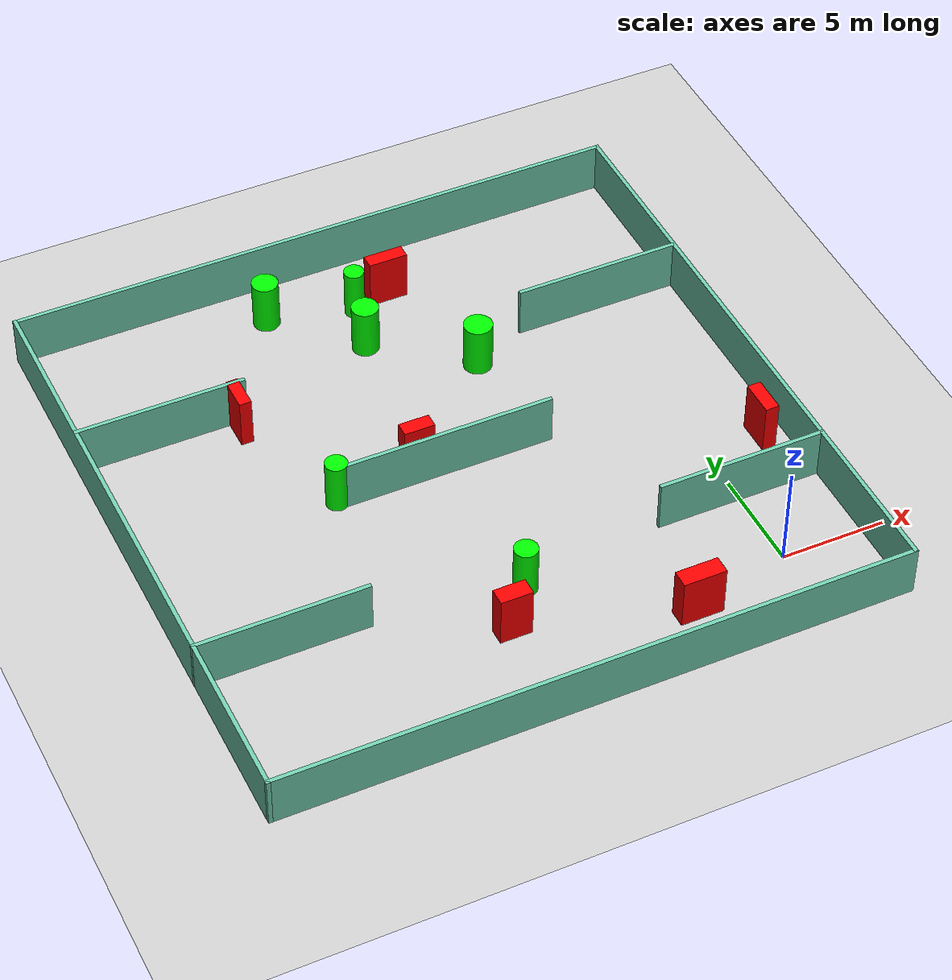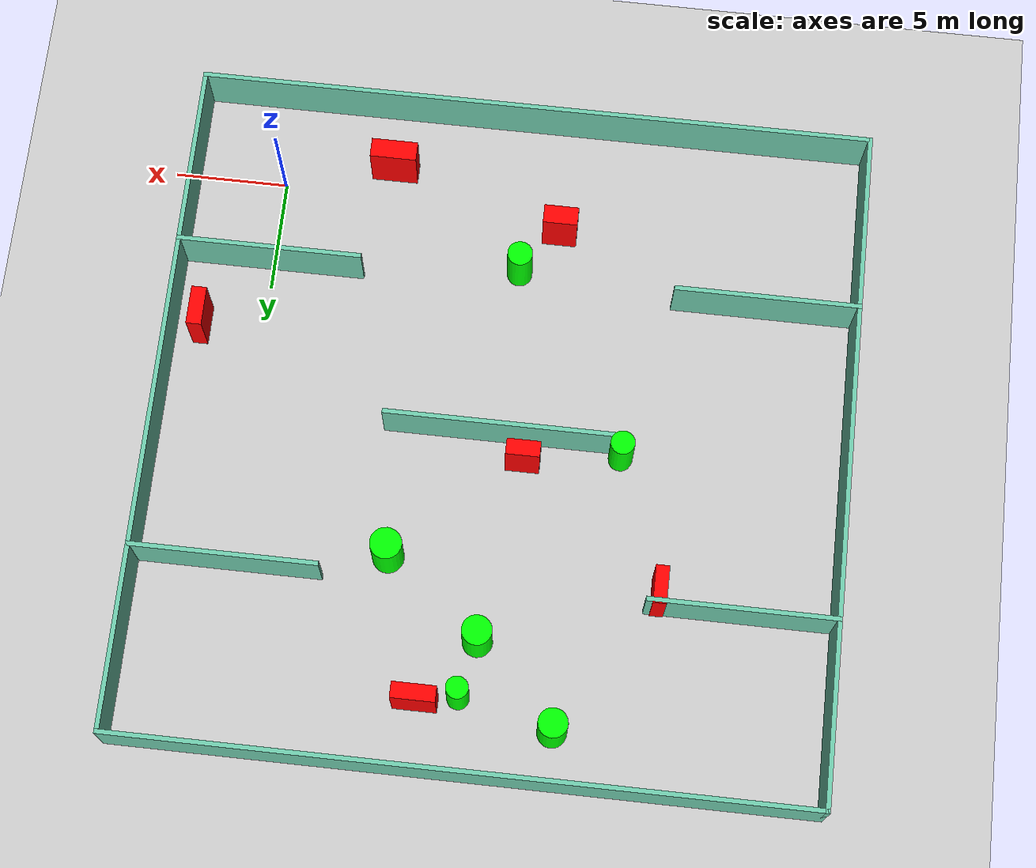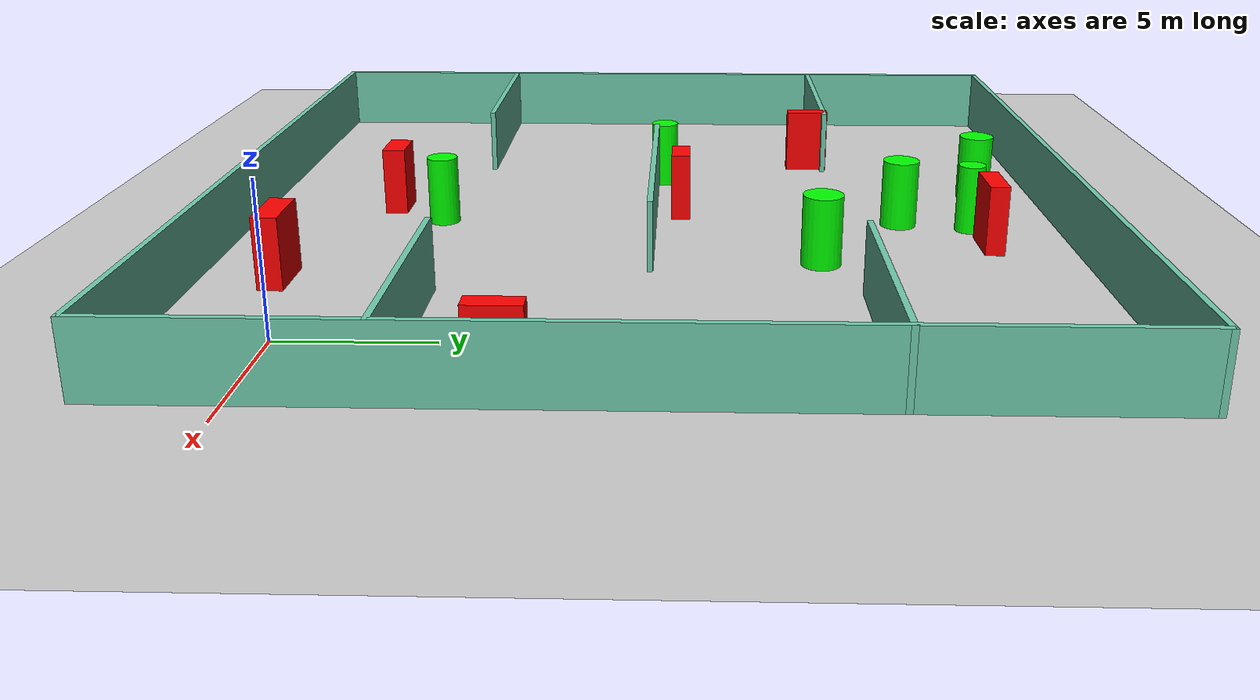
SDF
<sdf version="1.7">
 <world name="default">
  <light name="sun" type="directional">
   <pose>0 0 10 0 -0 0</pose>
   <diffuse>0.8 0.8 0.8 1</diffuse>
   <specular>0.2 0.2 0.2 1</specular>
   <attenuation>
    <range>1000</range>
    <constant>0.9</constant>
    <linear>0.01</linear>
    <quadratic>0.001</quadratic>
   </attenuation>
   <direction>-0.5 0.1 -0.9</direction>
   <spot><inner_angle>0</inner_angle><outer_angle>0</outer_angle><falloff>0</falloff></spot>
  </light>
  <model name="ground_plane">
   <static>1</static>
   <link name="link">
    <collision name="collision">
     <geometry><plane><normal>0 0 1</normal><size>100 100</size></plane></geometry>
     <surface>
      <contact><collide_bitmask>65535</collide_bitmask></contact>
      <friction><ode><mu>100</mu><mu2>50</mu2></ode></friction>
     </surface>
    </collision>
    <visual name="visual">
     <cast_shadows>0</cast_shadows>
     <geometry><plane><normal>0 0 1</normal><size>100 100</size></plane></geometry>
     <material>
      <script><uri>file://media/materials/scripts/gazebo.material</uri><name>Gazebo/Grey</name></script>
     </material>
    </visual>
   </link>
  </model>
  <gravity>0 0 -9.8</gravity>
  <magnetic_field>6e-06 2.3e-05 -4.2e-05</magnetic_field>
  <atmosphere type="adiabatic"/>
  <physics type="ode">
   <max_step_size>0.001</max_step_size>
   <real_time_factor>1</real_time_factor>
   <real_time_update_rate>1000</real_time_update_rate>
  </physics>
  <scene><ambient>0.4 0.4 0.4 1</ambient><background>0.7 0.7 0.7 1</background><shadows>1</shadows></scene>
  <spherical_coordinates>
   <surface_model>EARTH_WGS84</surface_model>
   <latitude_deg>0</latitude_deg>
   <longitude_deg>0</longitude_deg>
   <elevation>0</elevation>
   <heading_deg>0</heading_deg>
  </spherical_coordinates>
  <model name="my_base_walls">
   <link name="Wall_10">
    <collision name="Wall_10_Collision">
     <geometry><box><size>8.2 0.2 2.5</size></box></geometry>
     <pose>0 0 1.25 0 -0 0</pose>
    </collision>
    <visual name="Wall_10_Visual">
     <pose>0 0 1.25 0 -0 0</pose>
     <geometry><box><size>8.2 0.2 2.5</size></box></geometry>
     <material>
      <script><uri>file://media/materials/scripts/gazebo.material</uri><name>Gazebo/Grey</name></script>
      <ambient>0.435294 0.796078 0.67451 1</ambient>
     </material>
     <meta><layer>0</layer></meta>
    </visual>
    <pose>-11 -7 0 0 -0 0</pose>
   </link>
   <link name="Wall_12">
    <collision name="Wall_12_Collision">
     <geometry><box><size>8.2 0.2 2.5</size></box></geometry>
     <pose>0 0 1.25 0 -0 0</pose>
    </collision>
    <visual name="Wall_12_Visual">
     <pose>0 0 1.25 0 -0 0</pose>
     <geometry><box><size>8.2 0.2 2.5</size></box></geometry>
     <material>
      <script><uri>file://media/materials/scripts/gazebo.material</uri><name>Gazebo/Grey</name></script>
      <ambient>0.435294 0.796078 0.67451 1</ambient>
     </material>
     <meta><layer>0</layer></meta>
    </visual>
    <pose>-11 7 0 0 -0 0</pose>
   </link>
   <link name="Wall_14">
    <collision name="Wall_14_Collision">
     <geometry><box><size>8.2 0.2 2.5</size></box></geometry>
     <pose>0 0 1.25 0 -0 0</pose>
    </collision>
    <visual name="Wall_14_Visual">
     <pose>0 0 1.25 0 -0 0</pose>
     <geometry><box><size>8.2 0.2 2.5</size></box></geometry>
     <material>
      <script><uri>file://media/materials/scripts/gazebo.material</uri><name>Gazebo/Grey</name></script>
      <ambient>0.435294 0.796078 0.67451 1</ambient>
     </material>
     <meta><layer>0</layer></meta>
    </visual>
    <pose>11 7 0 0 -0 3.14159</pose>
   </link>
   <link name="Wall_16">
    <collision name="Wall_16_Collision">
     <geometry><box><size>10.2 0.2 2.5</size></box></geometry>
     <pose>0 0 1.25 0 -0 0</pose>
    </collision>
    <visual name="Wall_16_Visual">
     <pose>0 0 1.25 0 -0 0</pose>
     <geometry><box><size>10.2 0.2 2.5</size></box></geometry>
     <material>
      <script><uri>file://media/materials/scripts/gazebo.material</uri><name>Gazebo/Grey</name></script>
      <ambient>0.435294 0.796078 0.67451 1</ambient>
     </material>
     <meta><layer>0</layer></meta>
    </visual>
    <pose>0 0 0 0 -0 3.14159</pose>
   </link>
   <link name="Wall_2">
    <collision name="Wall_2_Collision">
     <geometry><box><size>30.2 0.2 2.5</size></box></geometry>
     <pose>0 0 1.25 0 -0 0</pose>
    </collision>
    <visual name="Wall_2_Visual">
     <pose>0 0 1.25 0 -0 0</pose>
     <geometry><box><size>30.2 0.2 2.5</size></box></geometry>
     <material>
      <script><uri>file://media/materials/scripts/gazebo.material</uri><name>Gazebo/Grey</name></script>
      <ambient>0.435294 0.796078 0.67451 1</ambient>
     </material>
     <meta><layer>0</layer></meta>
    </visual>
    <pose>0 -15 0 0 -0 3.14159</pose>
   </link>
   <link name="Wall_3">
    <collision name="Wall_3_Collision">
     <geometry><box><size>30.2 0.2 2.5</size></box></geometry>
     <pose>0 0 1.25 0 -0 0</pose>
    </collision>
    <visual name="Wall_3_Visual">
     <pose>0 0 1.25 0 -0 0</pose>
     <geometry><box><size>30.2 0.2 2.5</size></box></geometry>
     <material>
      <script><uri>file://media/materials/scripts/gazebo.material</uri><name>Gazebo/Grey</name></script>
      <ambient>0.435294 0.796078 0.67451 1</ambient>
     </material>
     <meta><layer>0</layer></meta>
    </visual>
    <pose>-15 0 0 0 -0 1.5708</pose>
   </link>
   <link name="Wall_4">
    <collision name="Wall_4_Collision">
     <geometry><box><size>30.2 0.2 2.5</size></box></geometry>
     <pose>0 0 1.25 0 -0 0</pose>
    </collision>
    <visual name="Wall_4_Visual">
     <pose>0 0 1.25 0 -0 0</pose>
     <geometry><box><size>30.2 0.2 2.5</size></box></geometry>
     <material>
      <script><uri>file://media/materials/scripts/gazebo.material</uri><name>Gazebo/Grey</name></script>
      <ambient>0.435294 0.796078 0.67451 1</ambient>
     </material>
     <meta><layer>0</layer></meta>
    </visual>
    <pose>0 15 0 0 -0 0</pose>
   </link>
   <link name="Wall_6">
    <collision name="Wall_6_Collision">
     <geometry><box><size>30.2 0.2 2.5</size></box></geometry>
     <pose>0 0 1.25 0 -0 0</pose>
    </collision>
    <visual name="Wall_6_Visual">
     <pose>0 0 1.25 0 -0 0</pose>
     <geometry><box><size>30.2 0.2 2.5</size></box></geometry>
     <material>
      <script><uri>file://media/materials/scripts/gazebo.material</uri><name>Gazebo/Grey</name></script>
      <ambient>0.435294 0.796078 0.67451 1</ambient>
     </material>
     <meta><layer>0</layer></meta>
    </visual>
    <pose>15 0 0 0 -0 1.5708</pose>
   </link>
   <link name="Wall_8">
    <collision name="Wall_8_Collision">
     <geometry><box><size>8.2 0.2 2.5</size></box></geometry>
     <pose>0 0 1.25 0 -0 0</pose>
    </collision>
    <visual name="Wall_8_Visual">
     <pose>0 0 1.25 0 -0 0</pose>
     <geometry><box><size>8.2 0.2 2.5</size></box></geometry>
     <material>
      <script><uri>file://media/materials/scripts/gazebo.material</uri><name>Gazebo/Grey</name></script>
      <ambient>0.435294 0.796078 0.67451 1</ambient>
     </material>
     <meta><layer>0</layer></meta>
    </visual>
    <pose>11 -7 0 0 -0 3.14159</pose>
   </link>
   <static>1</static>
   <pose>-11 11 0 0 -0 0</pose>
  </model>
  <model name="cylinder1">
   <static>1</static>
   <link name="link">
    <inertial>
     <mass>1</mass>
     <inertia><ixx>0.5</ixx><ixy>0</ixy><ixz>0</ixz><iyy>0.5</iyy><iyz>0</iyz><izz>1</izz></inertia>
    </inertial>
    <collision name="collision">
     <geometry><cylinder><radius>0.5288980589795176</radius><length>2.5</length></cylinder></geometry>
    </collision>
    <visual name="visual">
     <geometry><cylinder><radius>0.5288980589795176</radius><length>2.5</length></cylinder></geometry>
     <material>
      <ambient>0 1 0 1</ambient>
      <diffuse>0 1 0 1</diffuse>
      <specular>0.1 0.1 0.1 1</specular>
      <emissive>0 0 0 0</emissive>
     </material>
    </visual>
   </link>
   <pose>-16.318078120142403 11.323186957556299 1.25 0 0 0</pose>
  </model>
  <model name="cylinder2">
   <static>1</static>
   <link name="link">
    <inertial>
     <mass>1</mass>
     <inertia><ixx>0.5</ixx><ixy>0</ixy><ixz>0</ixz><iyy>0.5</iyy><iyz>0</iyz><izz>1</izz></inertia>
    </inertial>
    <collision name="collision">
     <geometry><cylinder><radius>0.6370916970480199</radius><length>2.5</length></cylinder></geometry>
    </collision>
    <visual name="visual">
     <geometry><cylinder><radius>0.6370916970480199</radius><length>2.5</length></cylinder></geometry>
     <material>
      <ambient>0 1 0 1</ambient>
      <diffuse>0 1 0 1</diffuse>
      <specular>0.1 0.1 0.1 1</specular>
      <emissive>0 0 0 0</emissive>
     </material>
    </visual>
   </link>
   <pose>-14.564469397029248 23.63096999384494 1.25 0 0 0</pose>
  </model>
  <model name="cylinder3">
   <static>1</static>
   <link name="link">
    <inertial>
     <mass>1</mass>
     <inertia><ixx>0.5</ixx><ixy>0</ixy><ixz>0</ixz><iyy>0.5</iyy><iyz>0</iyz><izz>1</izz></inertia>
    </inertial>
    <collision name="collision">
     <geometry><cylinder><radius>0.4855009043416353</radius><length>2.5</length></cylinder></geometry>
    </collision>
    <visual name="visual">
     <geometry><cylinder><radius>0.4855009043416353</radius><length>2.5</length></cylinder></geometry>
     <material>
      <ambient>0 1 0 1</ambient>
      <diffuse>0 1 0 1</diffuse>
      <specular>0.1 0.1 0.1 1</specular>
      <emissive>0 0 0 0</emissive>
     </material>
    </visual>
   </link>
   <pose>-10.47905130640436 22.599256657522407 1.25 0 0 0</pose>
  </model>
  <model name="cylinder4">
   <static>1</static>
   <link name="link">
    <inertial>
     <mass>1</mass>
     <inertia><ixx>0.5</ixx><ixy>0</ixy><ixz>0</ixz><iyy>0.5</iyy><iyz>0</iyz><izz>1</izz></inertia>
    </inertial>
    <collision name="collision">
     <geometry><cylinder><radius>0.5569715616057445</radius><length>2.5</length></cylinder></geometry>
    </collision>
    <visual name="visual">
     <geometry><cylinder><radius>0.5569715616057445</radius><length>2.5</length></cylinder></geometry>
     <material>
      <ambient>0 1 0 1</ambient>
      <diffuse>0 1 0 1</diffuse>
      <specular>0.1 0.1 0.1 1</specular>
      <emissive>0 0 0 0</emissive>
     </material>
    </visual>
   </link>
   <pose>-11.029666734203795 3.1372320293301517 1.25 0 0 0</pose>
  </model>
  <model name="cylinder5">
   <static>1</static>
   <link name="link">
    <inertial>
     <mass>1</mass>
     <inertia><ixx>0.5</ixx><ixy>0</ixy><ixz>0</ixz><iyy>0.5</iyy><iyz>0</iyz><izz>1</izz></inertia>
    </inertial>
    <collision name="collision">
     <geometry><cylinder><radius>0.6916139173654284</radius><length>2.5</length></cylinder></geometry>
    </collision>
    <visual name="visual">
     <geometry><cylinder><radius>0.6916139173654284</radius><length>2.5</length></cylinder></geometry>
     <material>
      <ambient>0 1 0 1</ambient>
      <diffuse>0 1 0 1</diffuse>
      <specular>0.1 0.1 0.1 1</specular>
      <emissive>0 0 0 0</emissive>
     </material>
    </visual>
   </link>
   <pose>-6.7917857506115595 16.818337284330365 1.25 0 0 0</pose>
  </model>
  <model name="cylinder6">
   <static>1</static>
   <link name="link">
    <inertial>
     <mass>1</mass>
     <inertia><ixx>0.5</ixx><ixy>0</ixy><ixz>0</ixz><iyy>0.5</iyy><iyz>0</iyz><izz>1</izz></inertia>
    </inertial>
    <collision name="collision">
     <geometry><cylinder><radius>0.6532512516523014</radius><length>2.5</length></cylinder></geometry>
    </collision>
    <visual name="visual">
     <geometry><cylinder><radius>0.6532512516523014</radius><length>2.5</length></cylinder></geometry>
     <material>
      <ambient>0 1 0 1</ambient>
      <diffuse>0 1 0 1</diffuse>
      <specular>0.1 0.1 0.1 1</specular>
      <emissive>0 0 0 0</emissive>
     </material>
    </visual>
   </link>
   <pose>-11.022733119295921 20.109910083988314 1.25 0 0 0</pose>
  </model>
  <model name="box1">
   <static>1</static>
   <link name="link">
    <inertial>
     <mass>1</mass>
     <inertia><ixx>0.083</ixx><ixy>0</ixy><ixz>0</ixz><iyy>0.083</iyy><iyz>0</iyz><izz>0.083</izz></inertia>
    </inertial>
    <collision name="collision">
     <geometry><box><size>0.670550650757345 1.7273717100093893 2.5</size></box></geometry>
    </collision>
    <visual name="visual">
     <geometry><box><size>0.670550650757345 1.7273717100093893 2.5</size></box></geometry>
     <material>
      <ambient>1 0 0 1</ambient>
      <diffuse>1 0 0 1</diffuse>
      <specular>0.1 0.1 0.1 1</specular>
      <emissive>0 0 0 0</emissive>
     </material>
    </visual>
    <sensor name="my_contact" type="contact">
     <contact><collision>box_collision</collision><topic>__default_topic__</topic></contact>
    </sensor>
   </link>
   <pose>2.744901161385524 7.085167593243165 1.25 0 0 0</pose>
  </model>
  <model name="box2">
   <static>1</static>
   <link name="link">
    <inertial>
     <mass>1</mass>
     <inertia><ixx>0.083</ixx><ixy>0</ixy><ixz>0</ixz><iyy>0.083</iyy><iyz>0</iyz><izz>0.083</izz></inertia>
    </inertial>
    <collision name="collision">
     <geometry><box><size>2.058616639990177 0.8586811026604744 2.5</size></box></geometry>
    </collision>
    <visual name="visual">
     <geometry><box><size>2.058616639990177 0.8586811026604744 2.5</size></box></geometry>
     <material>
      <ambient>1 0 0 1</ambient>
      <diffuse>1 0 0 1</diffuse>
      <specular>0.1 0.1 0.1 1</specular>
      <emissive>0 0 0 0</emissive>
     </material>
    </visual>
    <sensor name="my_contact" type="contact">
     <contact><collision>box_collision</collision><topic>__default_topic__</topic></contact>
    </sensor>
   </link>
   <pose>-4.901698318378566 -1.2341914410761707 1.25 0 0 0</pose>
  </model>
  <model name="box3">
   <static>1</static>
   <link name="link">
    <inertial>
     <mass>1</mass>
     <inertia><ixx>0.083</ixx><ixy>0</ixy><ixz>0</ixz><iyy>0.083</iyy><iyz>0</iyz><izz>0.083</izz></inertia>
    </inertial>
    <collision name="collision">
     <geometry><box><size>1.5296135901311125 0.8298351025195614 2.5</size></box></geometry>
    </collision>
    <visual name="visual">
     <geometry><box><size>1.5296135901311125 0.8298351025195614 2.5</size></box></geometry>
     <material>
      <ambient>1 0 0 1</ambient>
      <diffuse>1 0 0 1</diffuse>
      <specular>0.1 0.1 0.1 1</specular>
      <emissive>0 0 0 0</emissive>
     </material>
    </visual>
    <sensor name="my_contact" type="contact">
     <contact><collision>box_collision</collision><topic>__default_topic__</topic></contact>
    </sensor>
   </link>
   <pose>-12.629537299922546 1.1171202274061276 1.25 0 0 0</pose>
  </model>
  <model name="box4">
   <static>1</static>
   <link name="link">
    <inertial>
     <mass>1</mass>
     <inertia><ixx>0.083</ixx><ixy>0</ixy><ixz>0</ixz><iyy>0.083</iyy><iyz>0</iyz><izz>0.083</izz></inertia>
    </inertial>
    <collision name="collision">
     <geometry><box><size>1.4802428801522742 0.7025243775057889 2.5</size></box></geometry>
    </collision>
    <visual name="visual">
     <geometry><box><size>1.4802428801522742 0.7025243775057889 2.5</size></box></geometry>
     <material>
      <ambient>1 0 0 1</ambient>
      <diffuse>1 0 0 1</diffuse>
      <specular>0.1 0.1 0.1 1</specular>
      <emissive>0 0 0 0</emissive>
     </material>
    </visual>
    <sensor name="my_contact" type="contact">
     <contact><collision>box_collision</collision><topic>__default_topic__</topic></contact>
    </sensor>
   </link>
   <pose>-12.108056039874885 12.003585119461128 1.25 0 0 0</pose>
  </model>
  <model name="box5">
   <static>1</static>
   <link name="link">
    <inertial>
     <mass>1</mass>
     <inertia><ixx>0.083</ixx><ixy>0</ixy><ixz>0</ixz><iyy>0.083</iyy><iyz>0</iyz><izz>0.083</izz></inertia>
    </inertial>
    <collision name="collision">
     <geometry><box><size>1.902874860539398 0.6938911463347116 2.5</size></box></geometry>
    </collision>
    <visual name="visual">
     <geometry><box><size>1.902874860539398 0.6938911463347116 2.5</size></box></geometry>
     <material>
      <ambient>1 0 0 1</ambient>
      <diffuse>1 0 0 1</diffuse>
      <specular>0.1 0.1 0.1 1</specular>
      <emissive>0 0 0 0</emissive>
     </material>
    </visual>
    <sensor name="my_contact" type="contact">
     <contact><collision>box_collision</collision><topic>__default_topic__</topic></contact>
    </sensor>
   </link>
   <pose>-8.701960948148605 22.96795984373991 1.25 0 0 0</pose>
  </model>
  <model name="box6">
   <static>1</static>
   <link name="link">
    <inertial>
     <mass>1</mass>
     <inertia><ixx>0.083</ixx><ixy>0</ixy><ixz>0</ixz><iyy>0.083</iyy><iyz>0</iyz><izz>0.083</izz></inertia>
    </inertial>
    <collision name="collision">
     <geometry><box><size>0.5847785453406239 1.6505524692273617 2.5</size></box></geometry>
    </collision>
    <visual name="visual">
     <geometry><box><size>0.5847785453406239 1.6505524692273617 2.5</size></box></geometry>
     <material>
      <ambient>1 0 0 1</ambient>
      <diffuse>1 0 0 1</diffuse>
      <specular>0.1 0.1 0.1 1</specular>
      <emissive>0 0 0 0</emissive>
     </material>
    </visual>
    <sensor name="my_contact" type="contact">
     <contact><collision>box_collision</collision><topic>__default_topic__</topic></contact>
    </sensor>
   </link>
   <pose>-18.481740080137435 17.323546588733947 1.25 0 0 0</pose>
  </model>
 </world>
</sdf>
